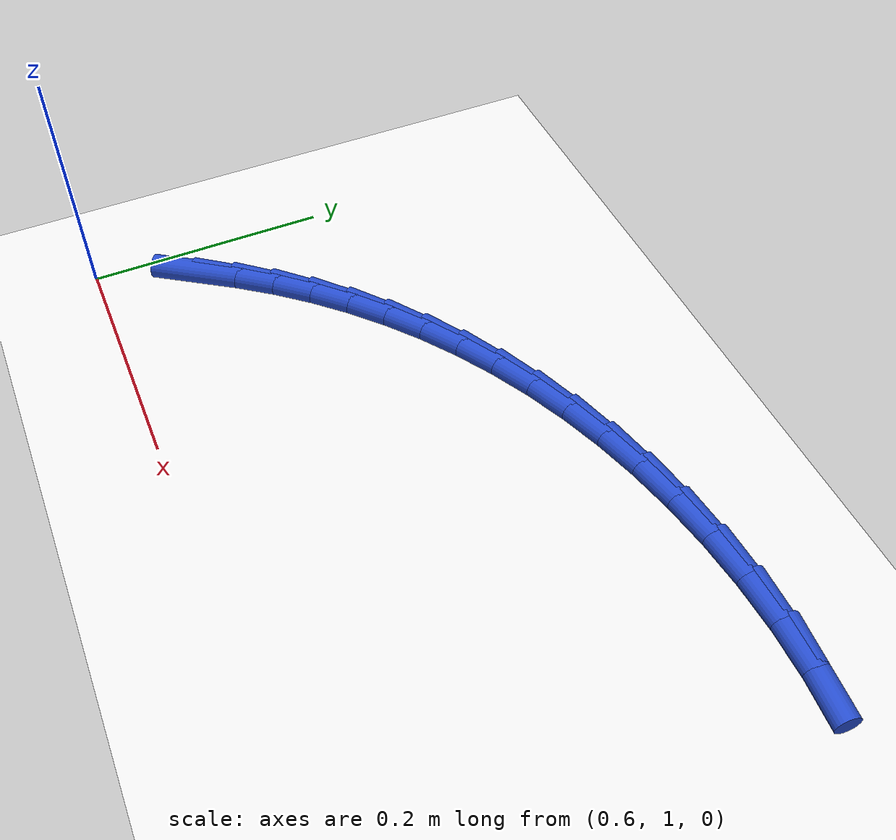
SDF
<sdf version="1.6">
 <world name="default">
  <model name="ground_plane">
   <static>1</static>
   <link name="link">
    <collision name="collision">
     <geometry><plane><normal>0 0 1</normal><size>100 100</size></plane></geometry>
     <surface><friction><ode><mu>100</mu><mu2>50</mu2></ode></friction></surface>
    </collision>
    <visual name="visual">
     <cast_shadows>0</cast_shadows>
     <geometry><plane><normal>0 0 1</normal><size>100 100</size></plane></geometry>
     <material>
      <script><uri>file://media/materials/scripts/gazebo.material</uri><name>Gazebo/WhiteGlow</name></script>
     </material>
    </visual>
   </link>
  </model>
  <model name="line">
   <link name="link_37">
    <pose>0.6365691286602302 1.0831719958924189 0.01 0 1.57 0.9793348463738109</pose>
    <collision name="collision">
     <geometry><cylinder><radius>0.01</radius><length>0.08</length></cylinder></geometry>
    </collision>
    <visual name="visual">
     <material>
      <script><name>Gazebo/Blue</name><uri>file://media/materials/scripts/gazebo.material</uri></script>
     </material>
     <geometry><cylinder><radius>0.01</radius><length>0.08</length></cylinder></geometry>
    </visual>
   </link>
   <link name="link_38">
    <pose>0.6558367137936312 1.1118578970285313 0.01 0 1.57 0.9274199164957214</pose>
    <collision name="collision">
     <geometry><cylinder><radius>0.01</radius><length>0.08</length></cylinder></geometry>
    </collision>
    <visual name="visual">
     <material>
      <script><name>Gazebo/Blue</name><uri>file://media/materials/scripts/gazebo.material</uri></script>
     </material>
     <geometry><cylinder><radius>0.01</radius><length>0.08</length></cylinder></geometry>
    </visual>
   </link>
   <link name="link_39">
    <pose>0.676500041516095 1.139416159309446 0.01 0 1.57 0.8657220078432462</pose>
    <collision name="collision">
     <geometry><cylinder><radius>0.01</radius><length>0.08</length></cylinder></geometry>
    </collision>
    <visual name="visual">
     <material>
      <script><name>Gazebo/Blue</name><uri>file://media/materials/scripts/gazebo.material</uri></script>
     </material>
     <geometry><cylinder><radius>0.01</radius><length>0.08</length></cylinder></geometry>
    </visual>
   </link>
   <link name="link_40">
    <pose>0.6988008850189337 1.1656216163870563 0.01 0 1.57 0.8025951879977177</pose>
    <collision name="collision">
     <geometry><cylinder><radius>0.01</radius><length>0.08</length></cylinder></geometry>
    </collision>
    <visual name="visual">
     <material>
      <script><name>Gazebo/Blue</name><uri>file://media/materials/scripts/gazebo.material</uri></script>
     </material>
     <geometry><cylinder><radius>0.01</radius><length>0.08</length></cylinder></geometry>
    </visual>
   </link>
   <link name="link_41">
    <pose>0.7227285406261549 1.1903867252193103 0.01 0 1.57 0.7392416002955182</pose>
    <collision name="collision">
     <geometry><cylinder><radius>0.01</radius><length>0.08</length></cylinder></geometry>
    </collision>
    <visual name="visual">
     <material>
      <script><name>Gazebo/Blue</name><uri>file://media/materials/scripts/gazebo.material</uri></script>
     </material>
     <geometry><cylinder><radius>0.01</radius><length>0.08</length></cylinder></geometry>
    </visual>
   </link>
   <link name="link_42">
    <pose>0.7482372778181804 1.2136430356421155 0.01 0 1.57 0.6757275125268553</pose>
    <collision name="collision">
     <geometry><cylinder><radius>0.01</radius><length>0.08</length></cylinder></geometry>
    </collision>
    <visual name="visual">
     <material>
      <script><name>Gazebo/Blue</name><uri>file://media/materials/scripts/gazebo.material</uri></script>
     </material>
     <geometry><cylinder><radius>0.01</radius><length>0.08</length></cylinder></geometry>
    </visual>
   </link>
   <link name="link_43">
    <pose>0.7752813660754317 1.235322097491378 0.01 0 1.57 0.6121303590094614</pose>
    <collision name="collision">
     <geometry><cylinder><radius>0.01</radius><length>0.08</length></cylinder></geometry>
    </collision>
    <visual name="visual">
     <material>
      <script><name>Gazebo/Blue</name><uri>file://media/materials/scripts/gazebo.material</uri></script>
     </material>
     <geometry><cylinder><radius>0.01</radius><length>0.08</length></cylinder></geometry>
    </visual>
   </link>
   <link name="link_44">
    <pose>0.8038150748783308 1.2553554606030048 0.01 0 1.57 0.5485389703150327</pose>
    <collision name="collision">
     <geometry><cylinder><radius>0.01</radius><length>0.08</length></cylinder></geometry>
    </collision>
    <visual name="visual">
     <material>
      <script><name>Gazebo/Blue</name><uri>file://media/materials/scripts/gazebo.material</uri></script>
     </material>
     <geometry><cylinder><radius>0.01</radius><length>0.08</length></cylinder></geometry>
    </visual>
   </link>
   <link name="link_45">
    <pose>0.8337926737072988 1.2736746748129029 0.01 0 1.57 0.48505324241310743</pose>
    <collision name="collision">
     <geometry><cylinder><radius>0.01</radius><length>0.08</length></cylinder></geometry>
    </collision>
    <visual name="visual">
     <material>
      <script><name>Gazebo/Blue</name><uri>file://media/materials/scripts/gazebo.material</uri></script>
     </material>
     <geometry><cylinder><radius>0.01</radius><length>0.08</length></cylinder></geometry>
    </visual>
   </link>
   <link name="link_46">
    <pose>0.8651684320427577 1.290211289956979 0.01 0 1.57 0.42178321167562166</pose>
    <collision name="collision">
     <geometry><cylinder><radius>0.01</radius><length>0.08</length></cylinder></geometry>
    </collision>
    <visual name="visual">
     <material>
      <script><name>Gazebo/Blue</name><uri>file://media/materials/scripts/gazebo.material</uri></script>
     </material>
     <geometry><cylinder><radius>0.01</radius><length>0.08</length></cylinder></geometry>
    </visual>
   </link>
   <link name="link_47">
    <pose>0.8978966193651292 1.304896855871141 0.01 0 1.57 0.3588475425762844</pose>
    <collision name="collision">
     <geometry><cylinder><radius>0.01</radius><length>0.08</length></cylinder></geometry>
    </collision>
    <visual name="visual">
     <material>
      <script><name>Gazebo/Blue</name><uri>file://media/materials/scripts/gazebo.material</uri></script>
     </material>
     <geometry><cylinder><radius>0.01</radius><length>0.08</length></cylinder></geometry>
    </visual>
   </link>
   <link name="link_48">
    <pose>0.9319315051548348 1.3176629223912948 0.01 0 1.57 0.2963714794348459</pose>
    <collision name="collision">
     <geometry><cylinder><radius>0.01</radius><length>0.08</length></cylinder></geometry>
    </collision>
    <visual name="visual">
     <material>
      <script><name>Gazebo/Blue</name><uri>file://media/materials/scripts/gazebo.material</uri></script>
     </material>
     <geometry><cylinder><radius>0.01</radius><length>0.08</length></cylinder></geometry>
    </visual>
   </link>
   <link name="link_49">
    <pose>0.9672273588922964 1.3284410393533477 0.01 0 1.57 0.23448433996915305</pose>
    <collision name="collision">
     <geometry><cylinder><radius>0.01</radius><length>0.08</length></cylinder></geometry>
    </collision>
    <visual name="visual">
     <material>
      <script><name>Gazebo/Blue</name><uri>file://media/materials/scripts/gazebo.material</uri></script>
     </material>
     <geometry><cylinder><radius>0.01</radius><length>0.08</length></cylinder></geometry>
    </visual>
   </link>
   <link name="link_50">
    <pose>1.0037384188946852 1.3371627484764115 0.01 0 1.57 0.1731466406709943</pose>
    <collision name="collision">
     <geometry><cylinder><radius>0.01</radius><length>0.08</length></cylinder></geometry>
    </collision>
    <visual name="visual">
     <material>
      <script><name>Gazebo/Blue</name><uri>file://media/materials/scripts/gazebo.material</uri></script>
     </material>
     <geometry><cylinder><radius>0.01</radius><length>0.08</length></cylinder></geometry>
    </visual>
   </link>
   <link name="link_51">
    <pose>1.0413417840081922 1.3437394996967627 0.01 0 1.57 0.11119973759189969</pose>
    <collision name="collision">
     <geometry><cylinder><radius>0.01</radius><length>0.08</length></cylinder></geometry>
    </collision>
    <visual name="visual">
     <material>
      <script><name>Gazebo/Blue</name><uri>file://media/materials/scripts/gazebo.material</uri></script>
     </material>
     <geometry><cylinder><radius>0.01</radius><length>0.08</length></cylinder></geometry>
    </visual>
   </link>
   <link name="link_52">
    <pose>1.0796713137847698 1.3480193887298757 0.01 0 1.57 0.04703011918606339</pose>
    <collision name="collision">
     <geometry><cylinder><radius>0.01</radius><length>0.08</length></cylinder></geometry>
    </collision>
    <visual name="visual">
     <material>
      <script><name>Gazebo/Blue</name><uri>file://media/materials/scripts/gazebo.material</uri></script>
     </material>
     <geometry><cylinder><radius>0.01</radius><length>0.08</length></cylinder></geometry>
    </visual>
   </link>
   <link name="link_53">
    <pose>1.1183130434315705 1.34983805493992 0.01 0 1.57 -0.020934097310999548</pose>
    <collision name="collision">
     <geometry><cylinder><radius>0.01</radius><length>0.08</length></cylinder></geometry>
    </collision>
    <visual name="visual">
     <material>
      <script><name>Gazebo/Blue</name><uri>file://media/materials/scripts/gazebo.material</uri></script>
     </material>
     <geometry><cylinder><radius>0.01</radius><length>0.08</length></cylinder></geometry>
    </visual>
   </link>
   <link name="link_54">
    <pose>1.1568530081557467 1.3490311376910662 0.01 0 1.57 -0.09431328008556371</pose>
    <collision name="collision">
     <geometry><cylinder><radius>0.01</radius><length>0.08</length></cylinder></geometry>
    </collision>
    <visual name="visual">
     <material>
      <script><name>Gazebo/Blue</name><uri>file://media/materials/scripts/gazebo.material</uri></script>
     </material>
     <geometry><cylinder><radius>0.01</radius><length>0.08</length></cylinder></geometry>
    </visual>
   </link>
  </model>
 </world>
</sdf>
